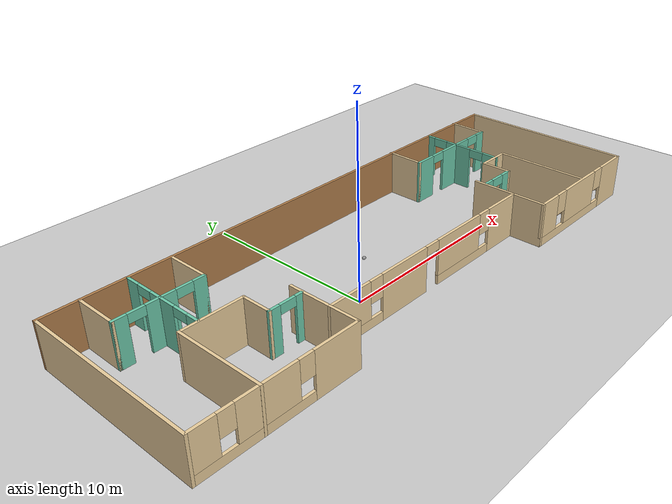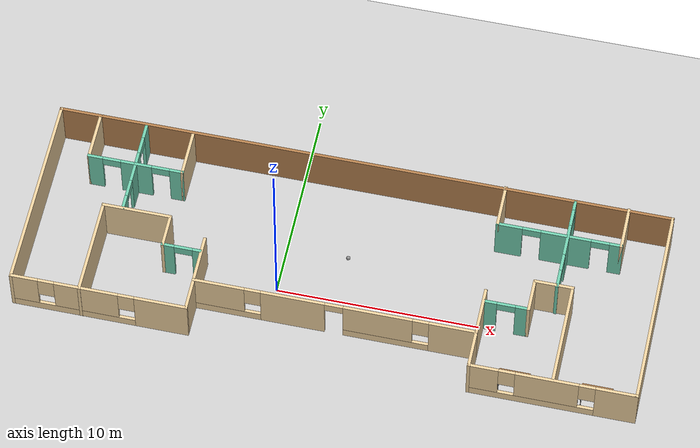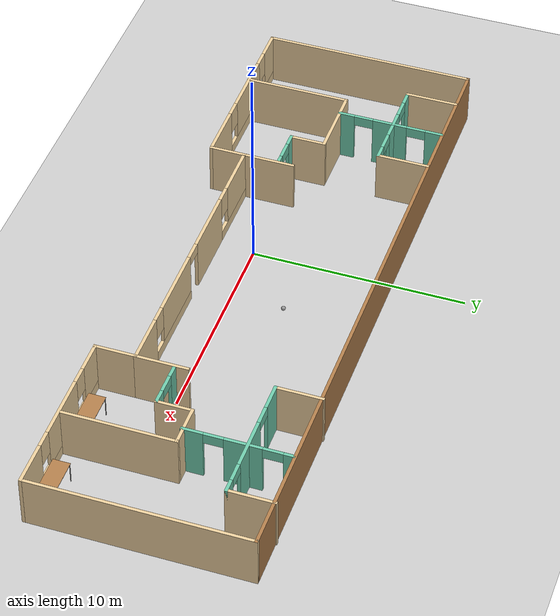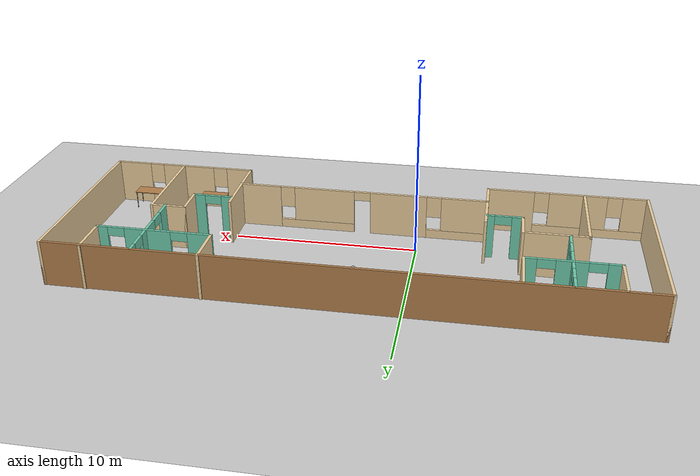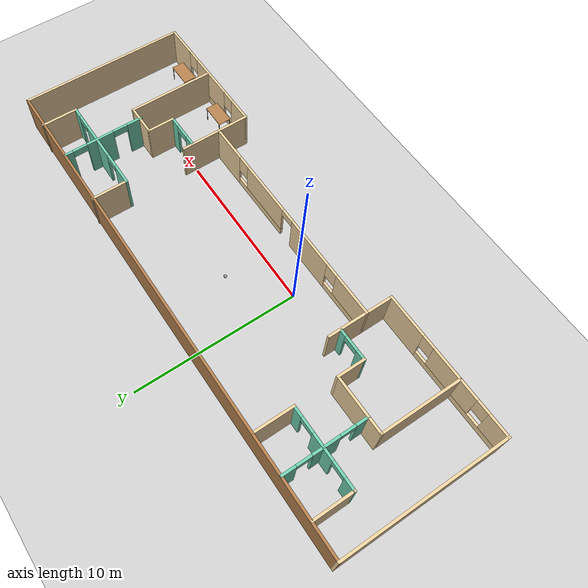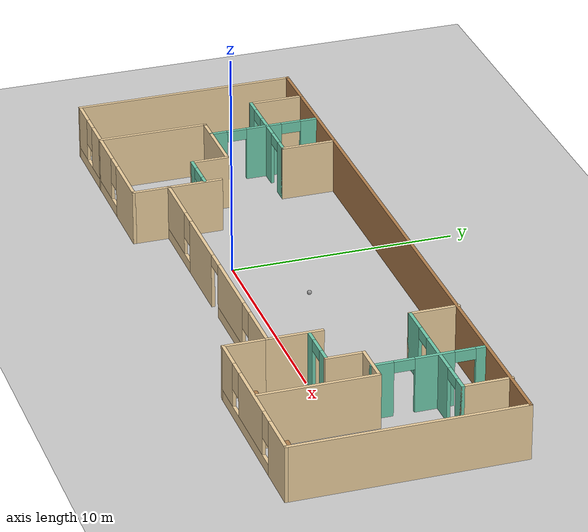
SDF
<sdf version="1.6">
 <world name="default">
  <model name="ground_plane">
   <static>1</static>
   <link name="link">
    <collision name="collision">
     <geometry><plane><normal>0 0 1</normal><size>100 100</size></plane></geometry>
     <surface>
      <contact><collide_bitmask>65535</collide_bitmask></contact>
      <friction><ode><mu>100</mu><mu2>50</mu2></ode></friction>
     </surface>
    </collision>
    <visual name="visual">
     <cast_shadows>0</cast_shadows>
     <geometry><plane><normal>0 0 1</normal><size>100 100</size></plane></geometry>
     <material>
      <script><uri>file://media/materials/scripts/gazebo.material</uri><name>Gazebo/Grey</name></script>
     </material>
    </visual>
   </link>
  </model>
  <model name="mybuilding">
   <pose>2.9576 1.50841 0 0 -0 0</pose>
   <link name="Wall_11">
    <collision name="Wall_11_Collision">
     <geometry><box><size>10 0.15 2.5</size></box></geometry>
     <pose>0 0 1.25 0 -0 0</pose>
    </collision>
    <visual name="Wall_11_Visual">
     <pose>0 0 1.25 0 -0 0</pose>
     <geometry><box><size>10 0.15 2.5</size></box></geometry>
     <material>
      <script><uri>file://media/materials/scripts/gazebo.material</uri><name>Gazebo/Grey</name></script>
      <ambient>0.921569 0.807843 0.615686 1</ambient>
     </material>
     <meta><layer>0</layer></meta>
    </visual>
    <pose>-15.3 0.098461 0 0 0 -1.5708</pose>
   </link>
   <link name="Wall_15">
    <collision name="Wall_15_Collision">
     <geometry><box><size>2.5 0.15 2.5</size></box></geometry>
     <pose>0 0 1.25 0 -0 0</pose>
    </collision>
    <visual name="Wall_15_Visual">
     <pose>0 0 1.25 0 -0 0</pose>
     <geometry><box><size>2.5 0.15 2.5</size></box></geometry>
     <material>
      <script><uri>file://media/materials/scripts/gazebo.material</uri><name>Gazebo/Grey</name></script>
      <ambient>0.921569 0.807843 0.615686 1</ambient>
     </material>
     <meta><layer>0</layer></meta>
    </visual>
    <pose>-6.65 -2.05154 0 0 -0 1.5708</pose>
   </link>
   <link name="Wall_19">
    <pose>-7.64549 -1.58136 0 0 -0 3.14159</pose>
    <visual name="Wall_19_Visual_0">
     <pose>-0.774273 0 1.25 0 -0 0</pose>
     <geometry><box><size>0.451455 0.15 2.5</size></box></geometry>
     <material>
      <script><uri>file://media/materials/scripts/gazebo.material</uri><name>Gazebo/Grey</name></script>
      <ambient>0.435294 0.796078 0.67451 1</ambient>
     </material>
     <meta><layer>0</layer></meta>
    </visual>
    <collision name="Wall_19_Collision_0">
     <geometry><box><size>0.451455 0.15 2.5</size></box></geometry>
     <pose>-0.774273 0 1.25 0 -0 0</pose>
    </collision>
    <visual name="Wall_19_Visual_1">
     <pose>0.675727 0 1.25 0 -0 0</pose>
     <geometry><box><size>0.648545 0.15 2.5</size></box></geometry>
     <material>
      <script><uri>file://media/materials/scripts/gazebo.material</uri><name>Gazebo/Grey</name></script>
      <ambient>0.435294 0.796078 0.67451 1</ambient>
     </material>
     <meta><layer>0</layer></meta>
    </visual>
    <collision name="Wall_19_Collision_1">
     <geometry><box><size>0.648545 0.15 2.5</size></box></geometry>
     <pose>0.675727 0 1.25 0 -0 0</pose>
    </collision>
    <visual name="Wall_19_Visual_2">
     <pose>-0.098545 0 2.25 0 -0 0</pose>
     <geometry><box><size>0.9 0.15 0.5</size></box></geometry>
     <material>
      <script><uri>file://media/materials/scripts/gazebo.material</uri><name>Gazebo/Grey</name></script>
      <ambient>0.435294 0.796078 0.67451 1</ambient>
     </material>
     <meta><layer>0</layer></meta>
    </visual>
    <collision name="Wall_19_Collision_2">
     <geometry><box><size>0.9 0.15 0.5</size></box></geometry>
     <pose>-0.098545 0 2.25 0 -0 0</pose>
    </collision>
   </link>
   <link name="Wall_20">
    <collision name="Wall_20_Collision">
     <geometry><box><size>1.75 0.15 2.5</size></box></geometry>
     <pose>0 0 1.25 0 -0 0</pose>
    </collision>
    <visual name="Wall_20_Visual">
     <pose>0 0 1.25 0 -0 0</pose>
     <geometry><box><size>1.75 0.15 2.5</size></box></geometry>
     <material>
      <script><uri>file://media/materials/scripts/gazebo.material</uri><name>Gazebo/Grey</name></script>
      <ambient>0.921569 0.807843 0.615686 1</ambient>
     </material>
     <meta><layer>0</layer></meta>
    </visual>
    <pose>-8.57049 -0.781363 0 0 -0 1.5708</pose>
   </link>
   <link name="Wall_21">
    <collision name="Wall_21_Collision">
     <geometry><box><size>3.5 0.15 2.5</size></box></geometry>
     <pose>0 0 1.25 0 -0 0</pose>
    </collision>
    <visual name="Wall_21_Visual">
     <pose>0 0 1.25 0 -0 0</pose>
     <geometry><box><size>3.5 0.15 2.5</size></box></geometry>
     <material>
      <script><uri>file://media/materials/scripts/gazebo.material</uri><name>Gazebo/Grey</name></script>
      <ambient>0.921569 0.807843 0.615686 1</ambient>
     </material>
     <meta><layer>0</layer></meta>
    </visual>
    <pose>-10.2455 0.018637 0 0 -0 3.14159</pose>
   </link>
   <link name="Wall_24">
    <collision name="Wall_24_Collision">
     <geometry><box><size>5 0.15 2.5</size></box></geometry>
     <pose>0 0 1.25 0 -0 0</pose>
    </collision>
    <visual name="Wall_24_Visual">
     <pose>0 0 1.25 0 -0 0</pose>
     <geometry><box><size>5 0.15 2.5</size></box></geometry>
     <material>
      <script><uri>file://media/materials/scripts/gazebo.material</uri><name>Gazebo/Grey</name></script>
      <ambient>0.921569 0.807843 0.615686 1</ambient>
     </material>
     <meta><layer>0</layer></meta>
    </visual>
    <pose>-11.9205 -2.40636 0 0 0 -1.5708</pose>
   </link>
   <link name="Wall_26">
    <pose>-10.9495 1.33646 0 0 -0 1.5708</pose>
    <visual name="Wall_26_Visual_0">
     <pose>-0.979241 0 1.25 0 -0 0</pose>
     <geometry><box><size>0.791517 0.15 2.5</size></box></geometry>
     <material>
      <script><uri>file://media/materials/scripts/gazebo.material</uri><name>Gazebo/Grey</name></script>
      <ambient>0.435294 0.796078 0.67451 1</ambient>
     </material>
     <meta><layer>0</layer></meta>
    </visual>
    <collision name="Wall_26_Collision_0">
     <geometry><box><size>0.791517 0.15 2.5</size></box></geometry>
     <pose>-0.979241 0 1.25 0 -0 0</pose>
    </collision>
    <visual name="Wall_26_Visual_1">
     <pose>0.845759 0 1.25 0 -0 0</pose>
     <geometry><box><size>1.05848 0.15 2.5</size></box></geometry>
     <material>
      <script><uri>file://media/materials/scripts/gazebo.material</uri><name>Gazebo/Grey</name></script>
      <ambient>0.435294 0.796078 0.67451 1</ambient>
     </material>
     <meta><layer>0</layer></meta>
    </visual>
    <collision name="Wall_26_Collision_1">
     <geometry><box><size>1.05848 0.15 2.5</size></box></geometry>
     <pose>0.845759 0 1.25 0 -0 0</pose>
    </collision>
    <visual name="Wall_26_Visual_2">
     <pose>-0.133483 0 2.25 0 -0 0</pose>
     <geometry><box><size>0.9 0.15 0.5</size></box></geometry>
     <material>
      <script><uri>file://media/materials/scripts/gazebo.material</uri><name>Gazebo/Grey</name></script>
      <ambient>0.435294 0.796078 0.67451 1</ambient>
     </material>
     <meta><layer>0</layer></meta>
    </visual>
    <collision name="Wall_26_Collision_2">
     <geometry><box><size>0.9 0.15 0.5</size></box></geometry>
     <pose>-0.133483 0 2.25 0 -0 0</pose>
    </collision>
   </link>
   <link name="Wall_27">
    <pose>-12.1245 2.63646 0 0 -0 3.14159</pose>
    <visual name="Wall_27_Visual_0">
     <pose>-0.837629 0 1.25 0 -0 0</pose>
     <geometry><box><size>0.824741 0.15 2.5</size></box></geometry>
     <material>
      <script><uri>file://media/materials/scripts/gazebo.material</uri><name>Gazebo/Grey</name></script>
      <ambient>0.435294 0.796078 0.67451 1</ambient>
     </material>
     <meta><layer>0</layer></meta>
    </visual>
    <collision name="Wall_27_Collision_0">
     <geometry><box><size>0.824741 0.15 2.5</size></box></geometry>
     <pose>-0.837629 0 1.25 0 -0 0</pose>
    </collision>
    <visual name="Wall_27_Visual_1">
     <pose>0.862371 0 1.25 0 -0 0</pose>
     <geometry><box><size>0.775259 0.15 2.5</size></box></geometry>
     <material>
      <script><uri>file://media/materials/scripts/gazebo.material</uri><name>Gazebo/Grey</name></script>
      <ambient>0.435294 0.796078 0.67451 1</ambient>
     </material>
     <meta><layer>0</layer></meta>
    </visual>
    <collision name="Wall_27_Collision_1">
     <geometry><box><size>0.775259 0.15 2.5</size></box></geometry>
     <pose>0.862371 0 1.25 0 -0 0</pose>
    </collision>
    <visual name="Wall_27_Visual_2">
     <pose>0.024741 0 2.25 0 -0 0</pose>
     <geometry><box><size>0.9 0.15 0.5</size></box></geometry>
     <material>
      <script><uri>file://media/materials/scripts/gazebo.material</uri><name>Gazebo/Grey</name></script>
      <ambient>0.435294 0.796078 0.67451 1</ambient>
     </material>
     <meta><layer>0</layer></meta>
    </visual>
    <collision name="Wall_27_Collision_2">
     <geometry><box><size>0.9 0.15 0.5</size></box></geometry>
     <pose>0.024741 0 2.25 0 -0 0</pose>
    </collision>
   </link>
   <link name="Wall_28">
    <collision name="Wall_28_Collision">
     <geometry><box><size>2.5 0.15 2.5</size></box></geometry>
     <pose>0 0 1.25 0 -0 0</pose>
    </collision>
    <visual name="Wall_28_Visual">
     <pose>0 0 1.25 0 -0 0</pose>
     <geometry><box><size>2.5 0.15 2.5</size></box></geometry>
     <material>
      <script><uri>file://media/materials/scripts/gazebo.material</uri><name>Gazebo/Grey</name></script>
      <ambient>0.921569 0.807843 0.615686 1</ambient>
     </material>
     <meta><layer>0</layer></meta>
    </visual>
    <pose>-13.2995 3.81146 0 0 -0 1.5708</pose>
   </link>
   <link name="Wall_3">
    <collision name="Wall_3_Collision">
     <geometry><box><size>30.75 0.15 2.5</size></box></geometry>
     <pose>0 0 1.25 0 -0 0</pose>
    </collision>
    <visual name="Wall_3_Visual">
     <pose>0 0 1.25 0 -0 0</pose>
     <geometry><box><size>30.75 0.15 2.5</size></box></geometry>
     <material>
      <script><uri>file://media/materials/scripts/gazebo.material</uri><name>Gazebo/Wood</name></script>
      <ambient>0.921569 0.807843 0.615686 1</ambient>
     </material>
     <meta><layer>0</layer></meta>
    </visual>
    <pose>0 5.02346 0 0 -0 0</pose>
   </link>
   <link name="Wall_33">
    <pose>-10.9495 3.81146 0 0 -0 1.5708</pose>
    <visual name="Wall_33_Visual_0">
     <pose>-0.884642 0 1.25 0 -0 0</pose>
     <geometry><box><size>0.730717 0.15 2.5</size></box></geometry>
     <material>
      <script><uri>file://media/materials/scripts/gazebo.material</uri><name>Gazebo/Grey</name></script>
      <ambient>0.435294 0.796078 0.67451 1</ambient>
     </material>
     <meta><layer>0</layer></meta>
    </visual>
    <collision name="Wall_33_Collision_0">
     <geometry><box><size>0.730717 0.15 2.5</size></box></geometry>
     <pose>-0.884642 0 1.25 0 -0 0</pose>
    </collision>
    <visual name="Wall_33_Visual_1">
     <pose>0.815358 0 1.25 0 -0 0</pose>
     <geometry><box><size>0.869283 0.15 2.5</size></box></geometry>
     <material>
      <script><uri>file://media/materials/scripts/gazebo.material</uri><name>Gazebo/Grey</name></script>
      <ambient>0.435294 0.796078 0.67451 1</ambient>
     </material>
     <meta><layer>0</layer></meta>
    </visual>
    <collision name="Wall_33_Collision_1">
     <geometry><box><size>0.869283 0.15 2.5</size></box></geometry>
     <pose>0.815358 0 1.25 0 -0 0</pose>
    </collision>
    <visual name="Wall_33_Visual_2">
     <pose>-0.069283 0 2.25 0 -0 0</pose>
     <geometry><box><size>0.9 0.15 0.5</size></box></geometry>
     <material>
      <script><uri>file://media/materials/scripts/gazebo.material</uri><name>Gazebo/Grey</name></script>
      <ambient>0.435294 0.796078 0.67451 1</ambient>
     </material>
     <meta><layer>0</layer></meta>
    </visual>
    <collision name="Wall_33_Collision_2">
     <geometry><box><size>0.9 0.15 0.5</size></box></geometry>
     <pose>-0.069283 0 2.25 0 -0 0</pose>
    </collision>
   </link>
   <link name="Wall_35">
    <pose>-9.7745 2.63646 0 0 -0 0</pose>
    <visual name="Wall_35_Visual_0">
     <pose>-0.807446 0 1.25 0 -0 0</pose>
     <geometry><box><size>0.885108 0.15 2.5</size></box></geometry>
     <material>
      <script><uri>file://media/materials/scripts/gazebo.material</uri><name>Gazebo/Grey</name></script>
      <ambient>0.435294 0.796078 0.67451 1</ambient>
     </material>
     <meta><layer>0</layer></meta>
    </visual>
    <collision name="Wall_35_Collision_0">
     <geometry><box><size>0.885108 0.15 2.5</size></box></geometry>
     <pose>-0.807446 0 1.25 0 -0 0</pose>
    </collision>
    <visual name="Wall_35_Visual_1">
     <pose>0.892554 0 1.25 0 -0 0</pose>
     <geometry><box><size>0.714892 0.15 2.5</size></box></geometry>
     <material>
      <script><uri>file://media/materials/scripts/gazebo.material</uri><name>Gazebo/Grey</name></script>
      <ambient>0.435294 0.796078 0.67451 1</ambient>
     </material>
     <meta><layer>0</layer></meta>
    </visual>
    <collision name="Wall_35_Collision_1">
     <geometry><box><size>0.714892 0.15 2.5</size></box></geometry>
     <pose>0.892554 0 1.25 0 -0 0</pose>
    </collision>
    <visual name="Wall_35_Visual_2">
     <pose>0.085108 0 2.25 0 -0 0</pose>
     <geometry><box><size>0.9 0.15 0.5</size></box></geometry>
     <material>
      <script><uri>file://media/materials/scripts/gazebo.material</uri><name>Gazebo/Grey</name></script>
      <ambient>0.435294 0.796078 0.67451 1</ambient>
     </material>
     <meta><layer>0</layer></meta>
    </visual>
    <collision name="Wall_35_Collision_2">
     <geometry><box><size>0.9 0.15 0.5</size></box></geometry>
     <pose>0.085108 0 2.25 0 -0 0</pose>
    </collision>
   </link>
   <link name="Wall_36">
    <collision name="Wall_36_Collision">
     <geometry><box><size>2.5 0.15 2.5</size></box></geometry>
     <pose>0 0 1.25 0 -0 0</pose>
    </collision>
    <visual name="Wall_36_Visual">
     <pose>0 0 1.25 0 -0 0</pose>
     <geometry><box><size>2.5 0.15 2.5</size></box></geometry>
     <material>
      <script><uri>file://media/materials/scripts/gazebo.material</uri><name>Gazebo/Grey</name></script>
      <ambient>0.921569 0.807843 0.615686 1</ambient>
     </material>
     <meta><layer>0</layer></meta>
    </visual>
    <pose>-8.5995 3.81146 0 0 -0 1.5708</pose>
   </link>
   <link name="Wall_38">
    <collision name="Wall_38_Collision">
     <geometry><box><size>2.5 0.15 2.5</size></box></geometry>
     <pose>0 0 1.25 0 -0 0</pose>
    </collision>
    <visual name="Wall_38_Visual">
     <pose>0 0 1.25 0 -0 0</pose>
     <geometry><box><size>2.5 0.15 2.5</size></box></geometry>
     <material>
      <script><uri>file://media/materials/scripts/gazebo.material</uri><name>Gazebo/Grey</name></script>
      <ambient>0.921569 0.807843 0.615686 1</ambient>
     </material>
     <meta><layer>0</layer></meta>
    </visual>
    <pose>7.2 -2.05154 0 0 -0 1.5708</pose>
   </link>
   <link name="Wall_4">
    <collision name="Wall_4_Collision">
     <geometry><box><size>10.25 0.15 2.5</size></box></geometry>
     <pose>0 0 1.25 0 -0 0</pose>
    </collision>
    <visual name="Wall_4_Visual">
     <pose>0 0 1.25 0 -0 0</pose>
     <geometry><box><size>10.25 0.15 2.5</size></box></geometry>
     <material>
      <script><uri>file://media/materials/scripts/gazebo.material</uri><name>Gazebo/Grey</name></script>
      <ambient>0.921569 0.807843 0.615686 1</ambient>
     </material>
     <meta><layer>0</layer></meta>
    </visual>
    <pose>15.3 -0.026539 0 0 0 -1.5708</pose>
   </link>
   <link name="Wall_41">
    <pose>8.3574 -1.44801 0 0 -0 0</pose>
    <visual name="Wall_41_Visual_0">
     <pose>-0.810611 0 1.25 0 -0 0</pose>
     <geometry><box><size>0.628777 0.15 2.5</size></box></geometry>
     <material>
      <script><uri>file://media/materials/scripts/gazebo.material</uri><name>Gazebo/Grey</name></script>
      <ambient>0.435294 0.796078 0.67451 1</ambient>
     </material>
     <meta><layer>0</layer></meta>
    </visual>
    <collision name="Wall_41_Collision_0">
     <geometry><box><size>0.628777 0.15 2.5</size></box></geometry>
     <pose>-0.810611 0 1.25 0 -0 0</pose>
    </collision>
    <visual name="Wall_41_Visual_1">
     <pose>0.764389 0 1.25 0 -0 0</pose>
     <geometry><box><size>0.721223 0.15 2.5</size></box></geometry>
     <material>
      <script><uri>file://media/materials/scripts/gazebo.material</uri><name>Gazebo/Grey</name></script>
      <ambient>0.435294 0.796078 0.67451 1</ambient>
     </material>
     <meta><layer>0</layer></meta>
    </visual>
    <collision name="Wall_41_Collision_1">
     <geometry><box><size>0.721223 0.15 2.5</size></box></geometry>
     <pose>0.764389 0 1.25 0 -0 0</pose>
    </collision>
    <visual name="Wall_41_Visual_2">
     <pose>-0.046223 0 2.25 0 -0 0</pose>
     <geometry><box><size>0.9 0.15 0.5</size></box></geometry>
     <material>
      <script><uri>file://media/materials/scripts/gazebo.material</uri><name>Gazebo/Grey</name></script>
      <ambient>0.435294 0.796078 0.67451 1</ambient>
     </material>
     <meta><layer>0</layer></meta>
    </visual>
    <collision name="Wall_41_Collision_2">
     <geometry><box><size>0.9 0.15 0.5</size></box></geometry>
     <pose>-0.046223 0 2.25 0 -0 0</pose>
    </collision>
   </link>
   <link name="Wall_42">
    <collision name="Wall_42_Collision">
     <geometry><box><size>1.75 0.15 2.5</size></box></geometry>
     <pose>0 0 1.25 0 -0 0</pose>
    </collision>
    <visual name="Wall_42_Visual">
     <pose>0 0 1.25 0 -0 0</pose>
     <geometry><box><size>1.75 0.15 2.5</size></box></geometry>
     <material>
      <script><uri>file://media/materials/scripts/gazebo.material</uri><name>Gazebo/Grey</name></script>
      <ambient>0.921569 0.807843 0.615686 1</ambient>
     </material>
     <meta><layer>0</layer></meta>
    </visual>
    <pose>9.4074 -0.648014 0 0 -0 1.5708</pose>
   </link>
   <link name="Wall_43">
    <collision name="Wall_43_Collision">
     <geometry><box><size>2 0.15 2.5</size></box></geometry>
     <pose>0 0 1.25 0 -0 0</pose>
    </collision>
    <visual name="Wall_43_Visual">
     <pose>0 0 1.25 0 -0 0</pose>
     <geometry><box><size>2 0.15 2.5</size></box></geometry>
     <material>
      <script><uri>file://media/materials/scripts/gazebo.material</uri><name>Gazebo/Grey</name></script>
      <ambient>0.921569 0.807843 0.615686 1</ambient>
     </material>
     <meta><layer>0</layer></meta>
    </visual>
    <pose>10.3324 0.151986 0 0 -0 0</pose>
   </link>
   <link name="Wall_44">
    <collision name="Wall_44_Collision">
     <geometry><box><size>5.25 0.15 2.5</size></box></geometry>
     <pose>0 0 1.25 0 -0 0</pose>
    </collision>
    <visual name="Wall_44_Visual">
     <pose>0 0 1.25 0 -0 0</pose>
     <geometry><box><size>5.25 0.15 2.5</size></box></geometry>
     <material>
      <script><uri>file://media/materials/scripts/gazebo.material</uri><name>Gazebo/Grey</name></script>
      <ambient>0.921569 0.807843 0.615686 1</ambient>
     </material>
     <meta><layer>0</layer></meta>
    </visual>
    <pose>11.2574 -2.39801 0 0 0 -1.5708</pose>
   </link>
   <link name="Wall_48">
    <pose>10.5012 2.52828 0 0 -0 1.5708</pose>
    <visual name="Wall_48_Visual_0">
     <pose>-2.00311 0 1.25 0 -0 0</pose>
     <geometry><box><size>0.993788 0.15 2.5</size></box></geometry>
     <material>
      <script><uri>file://media/materials/scripts/gazebo.material</uri><name>Gazebo/Grey</name></script>
      <ambient>0.435294 0.796078 0.67451 1</ambient>
     </material>
     <meta><layer>0</layer></meta>
    </visual>
    <collision name="Wall_48_Collision_0">
     <geometry><box><size>0.993788 0.15 2.5</size></box></geometry>
     <pose>-2.00311 0 1.25 0 -0 0</pose>
    </collision>
    <visual name="Wall_48_Visual_1">
     <pose>0.244136 0 1.25 0 -0 0</pose>
     <geometry><box><size>1.7007 0.15 2.5</size></box></geometry>
     <material>
      <script><uri>file://media/materials/scripts/gazebo.material</uri><name>Gazebo/Grey</name></script>
      <ambient>0.435294 0.796078 0.67451 1</ambient>
     </material>
     <meta><layer>0</layer></meta>
    </visual>
    <collision name="Wall_48_Collision_1">
     <geometry><box><size>1.7007 0.15 2.5</size></box></geometry>
     <pose>0.244136 0 1.25 0 -0 0</pose>
    </collision>
    <visual name="Wall_48_Visual_2">
     <pose>2.24724 0 1.25 0 -0 0</pose>
     <geometry><box><size>0.505516 0.15 2.5</size></box></geometry>
     <material>
      <script><uri>file://media/materials/scripts/gazebo.material</uri><name>Gazebo/Grey</name></script>
      <ambient>0.435294 0.796078 0.67451 1</ambient>
     </material>
     <meta><layer>0</layer></meta>
    </visual>
    <collision name="Wall_48_Collision_2">
     <geometry><box><size>0.505516 0.15 2.5</size></box></geometry>
     <pose>2.24724 0 1.25 0 -0 0</pose>
    </collision>
    <visual name="Wall_48_Visual_3">
     <pose>-1.05621 0 2.25 0 -0 0</pose>
     <geometry><box><size>0.9 0.15 0.5</size></box></geometry>
     <material>
      <script><uri>file://media/materials/scripts/gazebo.material</uri><name>Gazebo/Grey</name></script>
      <ambient>0.435294 0.796078 0.67451 1</ambient>
     </material>
     <meta><layer>0</layer></meta>
    </visual>
    <collision name="Wall_48_Collision_3">
     <geometry><box><size>0.9 0.15 0.5</size></box></geometry>
     <pose>-1.05621 0 2.25 0 -0 0</pose>
    </collision>
    <visual name="Wall_48_Visual_4">
     <pose>1.54448 0 2.25 0 -0 0</pose>
     <geometry><box><size>0.9 0.15 0.5</size></box></geometry>
     <material>
      <script><uri>file://media/materials/scripts/gazebo.material</uri><name>Gazebo/Grey</name></script>
      <ambient>0.435294 0.796078 0.67451 1</ambient>
     </material>
     <meta><layer>0</layer></meta>
    </visual>
    <collision name="Wall_48_Collision_4">
     <geometry><box><size>0.9 0.15 0.5</size></box></geometry>
     <pose>1.54448 0 2.25 0 -0 0</pose>
    </collision>
   </link>
   <link name="Wall_5">
    <pose>11.25 -5.07654 0 0 -0 3.14159</pose>
    <visual name="Wall_5_Visual_0">
     <pose>-3.09721 0 1.25 0 -0 0</pose>
     <geometry><box><size>2.05557 0.15 2.5</size></box></geometry>
     <material>
      <script><uri>file://media/materials/scripts/gazebo.material</uri><name>Gazebo/Grey</name></script>
      <ambient>0.921569 0.807843 0.615686 1</ambient>
     </material>
     <meta><layer>0</layer></meta>
    </visual>
    <collision name="Wall_5_Collision_0">
     <geometry><box><size>2.05557 0.15 2.5</size></box></geometry>
     <pose>-3.09721 0 1.25 0 -0 0</pose>
    </collision>
    <visual name="Wall_5_Visual_1">
     <pose>1.02778 0 0.25 0 -0 0</pose>
     <geometry><box><size>6.19443 0.15 0.5</size></box></geometry>
     <material>
      <script><uri>file://media/materials/scripts/gazebo.material</uri><name>Gazebo/Grey</name></script>
      <ambient>0.921569 0.807843 0.615686 1</ambient>
     </material>
     <meta><layer>0</layer></meta>
    </visual>
    <collision name="Wall_5_Collision_1">
     <geometry><box><size>6.19443 0.15 0.5</size></box></geometry>
     <pose>1.02778 0 0.25 0 -0 0</pose>
    </collision>
    <visual name="Wall_5_Visual_2">
     <pose>0.269685 0 1.5 0 -0 0</pose>
     <geometry><box><size>3.07823 0.15 2</size></box></geometry>
     <material>
      <script><uri>file://media/materials/scripts/gazebo.material</uri><name>Gazebo/Grey</name></script>
      <ambient>0.921569 0.807843 0.615686 1</ambient>
     </material>
     <meta><layer>0</layer></meta>
    </visual>
    <collision name="Wall_5_Collision_2">
     <geometry><box><size>3.07823 0.15 2</size></box></geometry>
     <pose>0.269685 0 1.5 0 -0 0</pose>
    </collision>
    <visual name="Wall_5_Visual_3">
     <pose>3.3669 0 1.5 0 -0 0</pose>
     <geometry><box><size>1.5162 0.15 2</size></box></geometry>
     <material>
      <script><uri>file://media/materials/scripts/gazebo.material</uri><name>Gazebo/Grey</name></script>
      <ambient>0.921569 0.807843 0.615686 1</ambient>
     </material>
     <meta><layer>0</layer></meta>
    </visual>
    <collision name="Wall_5_Collision_3">
     <geometry><box><size>1.5162 0.15 2</size></box></geometry>
     <pose>3.3669 0 1.5 0 -0 0</pose>
    </collision>
    <visual name="Wall_5_Visual_4">
     <pose>-1.66943 0 1.9 0 -0 0</pose>
     <geometry><box><size>0.8 0.15 1.2</size></box></geometry>
     <material>
      <script><uri>file://media/materials/scripts/gazebo.material</uri><name>Gazebo/Grey</name></script>
      <ambient>0.921569 0.807843 0.615686 1</ambient>
     </material>
     <meta><layer>0</layer></meta>
    </visual>
    <collision name="Wall_5_Collision_4">
     <geometry><box><size>0.8 0.15 1.2</size></box></geometry>
     <pose>-1.66943 0 1.9 0 -0 0</pose>
    </collision>
    <visual name="Wall_5_Visual_5">
     <pose>2.2088 0 1.9 0 -0 0</pose>
     <geometry><box><size>0.8 0.15 1.2</size></box></geometry>
     <material>
      <script><uri>file://media/materials/scripts/gazebo.material</uri><name>Gazebo/Grey</name></script>
      <ambient>0.921569 0.807843 0.615686 1</ambient>
     </material>
     <meta><layer>0</layer></meta>
    </visual>
    <collision name="Wall_5_Collision_5">
     <geometry><box><size>0.8 0.15 1.2</size></box></geometry>
     <pose>2.2088 0 1.9 0 -0 0</pose>
    </collision>
   </link>
   <link name="Wall_52">
    <collision name="Wall_52_Collision">
     <geometry><box><size>2.25 0.15 2.5</size></box></geometry>
     <pose>0 0 1.25 0 -0 0</pose>
    </collision>
    <visual name="Wall_52_Visual">
     <pose>0 0 1.25 0 -0 0</pose>
     <geometry><box><size>2.25 0.15 2.5</size></box></geometry>
     <material>
      <script><uri>file://media/materials/scripts/gazebo.material</uri><name>Gazebo/Grey</name></script>
      <ambient>0.921569 0.807843 0.615686 1</ambient>
     </material>
     <meta><layer>0</layer></meta>
    </visual>
    <pose>7.03364 4.02654 0 0 0 -1.5708</pose>
   </link>
   <link name="Wall_53">
    <pose>10.0836 2.97654 0 0 -0 0</pose>
    <visual name="Wall_53_Visual_0">
     <pose>-2.46841 0 1.25 0 -0 0</pose>
     <geometry><box><size>1.31317 0.15 2.5</size></box></geometry>
     <material>
      <script><uri>file://media/materials/scripts/gazebo.material</uri><name>Gazebo/Grey</name></script>
      <ambient>0.435294 0.796078 0.67451 1</ambient>
     </material>
     <meta><layer>0</layer></meta>
    </visual>
    <collision name="Wall_53_Collision_0">
     <geometry><box><size>1.31317 0.15 2.5</size></box></geometry>
     <pose>-2.46841 0 1.25 0 -0 0</pose>
    </collision>
    <visual name="Wall_53_Visual_1">
     <pose>0.326343 0 1.25 0 -0 0</pose>
     <geometry><box><size>2.47634 0.15 2.5</size></box></geometry>
     <material>
      <script><uri>file://media/materials/scripts/gazebo.material</uri><name>Gazebo/Grey</name></script>
      <ambient>0.435294 0.796078 0.67451 1</ambient>
     </material>
     <meta><layer>0</layer></meta>
    </visual>
    <collision name="Wall_53_Collision_1">
     <geometry><box><size>2.47634 0.15 2.5</size></box></geometry>
     <pose>0.326343 0 1.25 0 -0 0</pose>
    </collision>
    <visual name="Wall_53_Visual_2">
     <pose>2.79476 0 1.25 0 -0 0</pose>
     <geometry><box><size>0.660486 0.15 2.5</size></box></geometry>
     <material>
      <script><uri>file://media/materials/scripts/gazebo.material</uri><name>Gazebo/Grey</name></script>
      <ambient>0.435294 0.796078 0.67451 1</ambient>
     </material>
     <meta><layer>0</layer></meta>
    </visual>
    <collision name="Wall_53_Collision_2">
     <geometry><box><size>0.660486 0.15 2.5</size></box></geometry>
     <pose>2.79476 0 1.25 0 -0 0</pose>
    </collision>
    <visual name="Wall_53_Visual_3">
     <pose>-1.36183 0 2.25 0 -0 0</pose>
     <geometry><box><size>0.9 0.15 0.5</size></box></geometry>
     <material>
      <script><uri>file://media/materials/scripts/gazebo.material</uri><name>Gazebo/Grey</name></script>
      <ambient>0.435294 0.796078 0.67451 1</ambient>
     </material>
     <meta><layer>0</layer></meta>
    </visual>
    <collision name="Wall_53_Collision_3">
     <geometry><box><size>0.9 0.15 0.5</size></box></geometry>
     <pose>-1.36183 0 2.25 0 -0 0</pose>
    </collision>
    <visual name="Wall_53_Visual_4">
     <pose>2.01451 0 2.25 0 -0 0</pose>
     <geometry><box><size>0.9 0.15 0.5</size></box></geometry>
     <material>
      <script><uri>file://media/materials/scripts/gazebo.material</uri><name>Gazebo/Grey</name></script>
      <ambient>0.435294 0.796078 0.67451 1</ambient>
     </material>
     <meta><layer>0</layer></meta>
    </visual>
    <collision name="Wall_53_Collision_4">
     <geometry><box><size>0.9 0.15 0.5</size></box></geometry>
     <pose>2.01451 0 2.25 0 -0 0</pose>
    </collision>
   </link>
   <link name="Wall_56">
    <collision name="Wall_56_Collision">
     <geometry><box><size>2.25 0.15 2.5</size></box></geometry>
     <pose>0 0 1.25 0 -0 0</pose>
    </collision>
    <visual name="Wall_56_Visual">
     <pose>0 0 1.25 0 -0 0</pose>
     <geometry><box><size>2.25 0.15 2.5</size></box></geometry>
     <material>
      <script><uri>file://media/materials/scripts/gazebo.material</uri><name>Gazebo/Grey</name></script>
      <ambient>0.921569 0.807843 0.615686 1</ambient>
     </material>
     <meta><layer>0</layer></meta>
    </visual>
    <pose>13.1336 4.02654 0 0 -0 1.5708</pose>
   </link>
   <link name="Wall_6">
    <collision name="Wall_6_Collision">
     <geometry><box><size>2 0.15 2.5</size></box></geometry>
     <pose>0 0 1.25 0 -0 0</pose>
    </collision>
    <visual name="Wall_6_Visual">
     <pose>0 0 1.25 0 -0 0</pose>
     <geometry><box><size>2 0.15 2.5</size></box></geometry>
     <material>
      <script><uri>file://media/materials/scripts/gazebo.material</uri><name>Gazebo/Grey</name></script>
      <ambient>0.921569 0.807843 0.615686 1</ambient>
     </material>
     <meta><layer>0</layer></meta>
    </visual>
    <pose>7.2 -4.15154 0 0 -0 1.5708</pose>
   </link>
   <link name="Wall_7">
    <pose>0.275 -3.22654 0 0 -0 3.14159</pose>
    <visual name="Wall_7_Visual_0">
     <pose>-5.81322 0 1.25 0 -0 0</pose>
     <geometry><box><size>2.37356 0.15 2.5</size></box></geometry>
     <material>
      <script><uri>file://media/materials/scripts/gazebo.material</uri><name>Gazebo/Grey</name></script>
      <ambient>0.921569 0.807843 0.615686 1</ambient>
     </material>
     <meta><layer>0</layer></meta>
    </visual>
    <collision name="Wall_7_Collision_0">
     <geometry><box><size>2.37356 0.15 2.5</size></box></geometry>
     <pose>-5.81322 0 1.25 0 -0 0</pose>
    </collision>
    <visual name="Wall_7_Visual_1">
     <pose>2.04894 0 1.25 0 -0 0</pose>
     <geometry><box><size>3.1551 0.15 2.5</size></box></geometry>
     <material>
      <script><uri>file://media/materials/scripts/gazebo.material</uri><name>Gazebo/Grey</name></script>
      <ambient>0.921569 0.807843 0.615686 1</ambient>
     </material>
     <meta><layer>0</layer></meta>
    </visual>
    <collision name="Wall_7_Collision_1">
     <geometry><box><size>3.1551 0.15 2.5</size></box></geometry>
     <pose>2.04894 0 1.25 0 -0 0</pose>
    </collision>
    <visual name="Wall_7_Visual_2">
     <pose>-2.52753 0 0.25 0 -0 0</pose>
     <geometry><box><size>4.19784 0.15 0.5</size></box></geometry>
     <material>
      <script><uri>file://media/materials/scripts/gazebo.material</uri><name>Gazebo/Grey</name></script>
      <ambient>0.921569 0.807843 0.615686 1</ambient>
     </material>
     <meta><layer>0</layer></meta>
    </visual>
    <collision name="Wall_7_Collision_2">
     <geometry><box><size>4.19784 0.15 0.5</size></box></geometry>
     <pose>-2.52753 0 0.25 0 -0 0</pose>
    </collision>
    <visual name="Wall_7_Visual_3">
     <pose>5.31325 0 0.25 0 -0 0</pose>
     <geometry><box><size>3.37351 0.15 0.5</size></box></geometry>
     <material>
      <script><uri>file://media/materials/scripts/gazebo.material</uri><name>Gazebo/Grey</name></script>
      <ambient>0.921569 0.807843 0.615686 1</ambient>
     </material>
     <meta><layer>0</layer></meta>
    </visual>
    <collision name="Wall_7_Collision_3">
     <geometry><box><size>3.37351 0.15 0.5</size></box></geometry>
     <pose>5.31325 0 0.25 0 -0 0</pose>
    </collision>
    <visual name="Wall_7_Visual_4">
     <pose>-2.12753 0 1.5 0 -0 0</pose>
     <geometry><box><size>3.39784 0.15 2</size></box></geometry>
     <material>
      <script><uri>file://media/materials/scripts/gazebo.material</uri><name>Gazebo/Grey</name></script>
      <ambient>0.921569 0.807843 0.615686 1</ambient>
     </material>
     <meta><layer>0</layer></meta>
    </visual>
    <collision name="Wall_7_Collision_4">
     <geometry><box><size>3.39784 0.15 2</size></box></geometry>
     <pose>-2.12753 0 1.5 0 -0 0</pose>
    </collision>
    <visual name="Wall_7_Visual_5">
     <pose>-2.12753 0 1.5 0 -0 0</pose>
     <geometry><box><size>3.39784 0.15 2</size></box></geometry>
     <material>
      <script><uri>file://media/materials/scripts/gazebo.material</uri><name>Gazebo/Grey</name></script>
      <ambient>0.921569 0.807843 0.615686 1</ambient>
     </material>
     <meta><layer>0</layer></meta>
    </visual>
    <collision name="Wall_7_Collision_5">
     <geometry><box><size>3.39784 0.15 2</size></box></geometry>
     <pose>-2.12753 0 1.5 0 -0 0</pose>
    </collision>
    <visual name="Wall_7_Visual_6">
     <pose>5.71325 0 1.5 0 -0 0</pose>
     <geometry><box><size>2.57351 0.15 2</size></box></geometry>
     <material>
      <script><uri>file://media/materials/scripts/gazebo.material</uri><name>Gazebo/Grey</name></script>
      <ambient>0.921569 0.807843 0.615686 1</ambient>
     </material>
     <meta><layer>0</layer></meta>
    </visual>
    <collision name="Wall_7_Collision_6">
     <geometry><box><size>2.57351 0.15 2</size></box></geometry>
     <pose>5.71325 0 1.5 0 -0 0</pose>
    </collision>
    <visual name="Wall_7_Visual_7">
     <pose>-4.22645 0 1.9 0 -0 0</pose>
     <geometry><box><size>0.8 0.15 1.2</size></box></geometry>
     <material>
      <script><uri>file://media/materials/scripts/gazebo.material</uri><name>Gazebo/Grey</name></script>
      <ambient>0.921569 0.807843 0.615686 1</ambient>
     </material>
     <meta><layer>0</layer></meta>
    </visual>
    <collision name="Wall_7_Collision_7">
     <geometry><box><size>0.8 0.15 1.2</size></box></geometry>
     <pose>-4.22645 0 1.9 0 -0 0</pose>
    </collision>
    <visual name="Wall_7_Visual_8">
     <pose>4.02649 0 1.9 0 -0 0</pose>
     <geometry><box><size>0.8 0.15 1.2</size></box></geometry>
     <material>
      <script><uri>file://media/materials/scripts/gazebo.material</uri><name>Gazebo/Grey</name></script>
      <ambient>0.921569 0.807843 0.615686 1</ambient>
     </material>
     <meta><layer>0</layer></meta>
    </visual>
    <collision name="Wall_7_Collision_8">
     <geometry><box><size>0.8 0.15 1.2</size></box></geometry>
     <pose>4.02649 0 1.9 0 -0 0</pose>
    </collision>
    <visual name="Wall_7_Visual_9">
     <pose>0.021391 0 2.25 0 -0 0</pose>
     <geometry><box><size>0.9 0.15 0.5</size></box></geometry>
     <material>
      <script><uri>file://media/materials/scripts/gazebo.material</uri><name>Gazebo/Grey</name></script>
      <ambient>0.921569 0.807843 0.615686 1</ambient>
     </material>
     <meta><layer>0</layer></meta>
    </visual>
    <collision name="Wall_7_Collision_9">
     <geometry><box><size>0.9 0.15 0.5</size></box></geometry>
     <pose>0.021391 0 2.25 0 -0 0</pose>
    </collision>
    <visual name="Wall_7_Visual_10">
     <pose>0.021391 0 2.25 0 -0 0</pose>
     <geometry><box><size>0.9 0.15 0.5</size></box></geometry>
     <material>
      <script><uri>file://media/materials/scripts/gazebo.material</uri><name>Gazebo/Grey</name></script>
      <ambient>0.921569 0.807843 0.615686 1</ambient>
     </material>
     <meta><layer>0</layer></meta>
    </visual>
    <collision name="Wall_7_Collision_10">
     <geometry><box><size>0.9 0.15 0.5</size></box></geometry>
     <pose>0.021391 0 2.25 0 -0 0</pose>
    </collision>
   </link>
   <link name="Wall_8">
    <collision name="Wall_8_Collision">
     <geometry><box><size>1.75 0.15 2.5</size></box></geometry>
     <pose>0 0 1.25 0 -0 0</pose>
    </collision>
    <visual name="Wall_8_Visual">
     <pose>0 0 1.25 0 -0 0</pose>
     <geometry><box><size>1.75 0.15 2.5</size></box></geometry>
     <material>
      <script><uri>file://media/materials/scripts/gazebo.material</uri><name>Gazebo/Grey</name></script>
      <ambient>0.921569 0.807843 0.615686 1</ambient>
     </material>
     <meta><layer>0</layer></meta>
    </visual>
    <pose>-6.65 -4.02654 0 0 0 -1.5708</pose>
   </link>
   <link name="Wall_9">
    <pose>-10.95 -4.82654 0 0 -0 3.14159</pose>
    <visual name="Wall_9_Visual_0">
     <pose>-3.05748 0 1.25 0 -0 0</pose>
     <geometry><box><size>2.63504 0.15 2.5</size></box></geometry>
     <material>
      <script><uri>file://media/materials/scripts/gazebo.material</uri><name>Gazebo/Grey</name></script>
      <ambient>0.921569 0.807843 0.615686 1</ambient>
     </material>
     <meta><layer>0</layer></meta>
    </visual>
    <collision name="Wall_9_Collision_0">
     <geometry><box><size>2.63504 0.15 2.5</size></box></geometry>
     <pose>-3.05748 0 1.25 0 -0 0</pose>
    </collision>
    <visual name="Wall_9_Visual_1">
     <pose>1.31752 0 0.25 0 -0 0</pose>
     <geometry><box><size>6.11496 0.15 0.5</size></box></geometry>
     <material>
      <script><uri>file://media/materials/scripts/gazebo.material</uri><name>Gazebo/Grey</name></script>
      <ambient>0.921569 0.807843 0.615686 1</ambient>
     </material>
     <meta><layer>0</layer></meta>
    </visual>
    <collision name="Wall_9_Collision_1">
     <geometry><box><size>6.11496 0.15 0.5</size></box></geometry>
     <pose>1.31752 0 0.25 0 -0 0</pose>
    </collision>
    <visual name="Wall_9_Visual_2">
     <pose>0.643793 0 1.5 0 -0 0</pose>
     <geometry><box><size>3.1675 0.15 2</size></box></geometry>
     <material>
      <script><uri>file://media/materials/scripts/gazebo.material</uri><name>Gazebo/Grey</name></script>
      <ambient>0.921569 0.807843 0.615686 1</ambient>
     </material>
     <meta><layer>0</layer></meta>
    </visual>
    <collision name="Wall_9_Collision_2">
     <geometry><box><size>3.1675 0.15 2</size></box></geometry>
     <pose>0.643793 0 1.5 0 -0 0</pose>
    </collision>
    <visual name="Wall_9_Visual_3">
     <pose>3.70127 0 1.5 0 -0 0</pose>
     <geometry><box><size>1.34746 0.15 2</size></box></geometry>
     <material>
      <script><uri>file://media/materials/scripts/gazebo.material</uri><name>Gazebo/Grey</name></script>
      <ambient>0.921569 0.807843 0.615686 1</ambient>
     </material>
     <meta><layer>0</layer></meta>
    </visual>
    <collision name="Wall_9_Collision_3">
     <geometry><box><size>1.34746 0.15 2</size></box></geometry>
     <pose>3.70127 0 1.5 0 -0 0</pose>
    </collision>
    <visual name="Wall_9_Visual_4">
     <pose>-1.33996 0 1.9 0 -0 0</pose>
     <geometry><box><size>0.8 0.15 1.2</size></box></geometry>
     <material>
      <script><uri>file://media/materials/scripts/gazebo.material</uri><name>Gazebo/Grey</name></script>
      <ambient>0.921569 0.807843 0.615686 1</ambient>
     </material>
     <meta><layer>0</layer></meta>
    </visual>
    <collision name="Wall_9_Collision_4">
     <geometry><box><size>0.8 0.15 1.2</size></box></geometry>
     <pose>-1.33996 0 1.9 0 -0 0</pose>
    </collision>
    <visual name="Wall_9_Visual_5">
     <pose>2.62754 0 1.9 0 -0 0</pose>
     <geometry><box><size>0.8 0.15 1.2</size></box></geometry>
     <material>
      <script><uri>file://media/materials/scripts/gazebo.material</uri><name>Gazebo/Grey</name></script>
      <ambient>0.921569 0.807843 0.615686 1</ambient>
     </material>
     <meta><layer>0</layer></meta>
    </visual>
    <collision name="Wall_9_Collision_5">
     <geometry><box><size>0.8 0.15 1.2</size></box></geometry>
     <pose>2.62754 0 1.9 0 -0 0</pose>
    </collision>
   </link>
   <static>1</static>
  </model>
  <model name="table">
   <static>1</static>
   <link name="link">
    <collision name="surface">
     <pose>0 0 1 0 -0 0</pose>
     <geometry><box><size>1.5 0.8 0.03</size></box></geometry>
     <surface><friction><ode><mu>0.6</mu><mu2>0.6</mu2></ode></friction></surface>
    </collision>
    <visual name="visual1">
     <pose>0 0 1 0 -0 0</pose>
     <geometry><box><size>1.5 0.8 0.03</size></box></geometry>
     <material>
      <script><uri>file://media/materials/scripts/gazebo.material</uri><name>Gazebo/Wood</name></script>
     </material>
    </visual>
    <collision name="front_left_leg">
     <pose>0.68 0.38 0.5 0 -0 0</pose>
     <geometry><cylinder><radius>0.02</radius><length>1</length></cylinder></geometry>
    </collision>
    <visual name="front_left_leg">
     <pose>0.68 0.38 0.5 0 -0 0</pose>
     <geometry><cylinder><radius>0.02</radius><length>1</length></cylinder></geometry>
     <material>
      <script><uri>file://media/materials/scripts/gazebo.material</uri><name>Gazebo/Grey</name></script>
     </material>
    </visual>
    <collision name="front_right_leg">
     <pose>0.68 -0.38 0.5 0 -0 0</pose>
     <geometry><cylinder><radius>0.02</radius><length>1</length></cylinder></geometry>
    </collision>
    <visual name="front_right_leg">
     <pose>0.68 -0.38 0.5 0 -0 0</pose>
     <geometry><cylinder><radius>0.02</radius><length>1</length></cylinder></geometry>
     <material>
      <script><uri>file://media/materials/scripts/gazebo.material</uri><name>Gazebo/Grey</name></script>
     </material>
    </visual>
    <collision name="back_right_leg">
     <pose>-0.68 -0.38 0.5 0 -0 0</pose>
     <geometry><cylinder><radius>0.02</radius><length>1</length></cylinder></geometry>
    </collision>
    <visual name="back_right_leg">
     <pose>-0.68 -0.38 0.5 0 -0 0</pose>
     <geometry><cylinder><radius>0.02</radius><length>1</length></cylinder></geometry>
     <material>
      <script><uri>file://media/materials/scripts/gazebo.material</uri><name>Gazebo/Grey</name></script>
     </material>
    </visual>
    <collision name="back_left_leg">
     <pose>-0.68 0.38 0.5 0 -0 0</pose>
     <geometry><cylinder><radius>0.02</radius><length>1</length></cylinder></geometry>
    </collision>
    <visual name="back_left_leg">
     <pose>-0.68 0.38 0.5 0 -0 0</pose>
     <geometry><cylinder><radius>0.02</radius><length>1</length></cylinder></geometry>
     <material>
      <script><uri>file://media/materials/scripts/gazebo.material</uri><name>Gazebo/Grey</name></script>
     </material>
    </visual>
   </link>
   <pose>12.2765 -2.98682 0 0 -0 0</pose>
  </model>
  <model name="table_0">
   <static>1</static>
   <link name="link">
    <collision name="surface">
     <pose>0 0 1 0 -0 0</pose>
     <geometry><box><size>1.5 0.8 0.03</size></box></geometry>
     <surface><friction><ode><mu>0.6</mu><mu2>0.6</mu2></ode></friction></surface>
    </collision>
    <visual name="visual1">
     <pose>0 0 1 0 -0 0</pose>
     <geometry><box><size>1.5 0.8 0.03</size></box></geometry>
     <material>
      <script><uri>file://media/materials/scripts/gazebo.material</uri><name>Gazebo/Wood</name></script>
     </material>
    </visual>
    <collision name="front_left_leg">
     <pose>0.68 0.38 0.5 0 -0 0</pose>
     <geometry><cylinder><radius>0.02</radius><length>1</length></cylinder></geometry>
    </collision>
    <visual name="front_left_leg">
     <pose>0.68 0.38 0.5 0 -0 0</pose>
     <geometry><cylinder><radius>0.02</radius><length>1</length></cylinder></geometry>
     <material>
      <script><uri>file://media/materials/scripts/gazebo.material</uri><name>Gazebo/Grey</name></script>
     </material>
    </visual>
    <collision name="front_right_leg">
     <pose>0.68 -0.38 0.5 0 -0 0</pose>
     <geometry><cylinder><radius>0.02</radius><length>1</length></cylinder></geometry>
    </collision>
    <visual name="front_right_leg">
     <pose>0.68 -0.38 0.5 0 -0 0</pose>
     <geometry><cylinder><radius>0.02</radius><length>1</length></cylinder></geometry>
     <material>
      <script><uri>file://media/materials/scripts/gazebo.material</uri><name>Gazebo/Grey</name></script>
     </material>
    </visual>
    <collision name="back_right_leg">
     <pose>-0.68 -0.38 0.5 0 -0 0</pose>
     <geometry><cylinder><radius>0.02</radius><length>1</length></cylinder></geometry>
    </collision>
    <visual name="back_right_leg">
     <pose>-0.68 -0.38 0.5 0 -0 0</pose>
     <geometry><cylinder><radius>0.02</radius><length>1</length></cylinder></geometry>
     <material>
      <script><uri>file://media/materials/scripts/gazebo.material</uri><name>Gazebo/Grey</name></script>
     </material>
    </visual>
    <collision name="back_left_leg">
     <pose>-0.68 0.38 0.5 0 -0 0</pose>
     <geometry><cylinder><radius>0.02</radius><length>1</length></cylinder></geometry>
    </collision>
    <visual name="back_left_leg">
     <pose>-0.68 0.38 0.5 0 -0 0</pose>
     <geometry><cylinder><radius>0.02</radius><length>1</length></cylinder></geometry>
     <material>
      <script><uri>file://media/materials/scripts/gazebo.material</uri><name>Gazebo/Grey</name></script>
     </material>
    </visual>
   </link>
   <pose>16.2886 -2.97188 0 0 -0 0</pose>
  </model>
  <model name="my_ball">
   <link name="link_0">
    <inertial>
     <mass>1</mass>
     <inertia><ixx>0.1</ixx><ixy>0</ixy><ixz>0</ixz><iyy>0.1</iyy><iyz>0</iyz><izz>0.1</izz></inertia>
    </inertial>
    <visual name="visual">
     <geometry><sphere><radius>0.1</radius></sphere></geometry>
     <material>
      <lighting>1</lighting>
      <script><uri>file://media/materials/scripts/gazebo.material</uri><name>Gazebo/Grey</name></script>
      <shader type="pixel"><normal_map>__default__</normal_map></shader>
      <ambient>1 1 1 1</ambient>
      <diffuse>1 1 1 1</diffuse>
      <specular>1 1 1 1</specular>
      <emissive>1 1 1 1</emissive>
     </material>
    </visual>
    <collision name="collision">
     <geometry><sphere><radius>0.1</radius></sphere></geometry>
     <surface>
      <friction>
       <ode><mu>1</mu><mu2>1</mu2><fdir1>0 0 0</fdir1><slip1>0</slip1><slip2>0</slip2></ode>
       <torsional>
        <coefficient>1</coefficient>
        <patch_radius>0</patch_radius>
        <surface_radius>0</surface_radius>
        <use_patch_radius>1</use_patch_radius>
        <ode><slip>0</slip></ode>
       </torsional>
      </friction>
      <bounce><restitution_coefficient>0</restitution_coefficient><threshold>1e+06</threshold></bounce>
      <contact>
       <collide_without_contact>0</collide_without_contact>
       <collide_without_contact_bitmask>1</collide_without_contact_bitmask>
       <collide_bitmask>1</collide_bitmask>
       <ode>
        <soft_cfm>0</soft_cfm>
        <soft_erp>0.2</soft_erp>
        <kp>1e+13</kp>
        <kd>1</kd>
        <max_vel>0.01</max_vel>
        <min_depth>0</min_depth>
       </ode>
       <bullet>
        <split_impulse>1</split_impulse>
        <split_impulse_penetration_threshold>-0.01</split_impulse_penetration_threshold>
        <soft_cfm>0</soft_cfm>
        <soft_erp>0.2</soft_erp>
        <kp>1e+13</kp>
        <kd>1</kd>
       </bullet>
      </contact>
     </surface>
    </collision>
   </link>
   <static>0</static>
   <pose>3.02553 2.47706 0.1 0 -0 0</pose>
  </model>
 </world>
</sdf>
